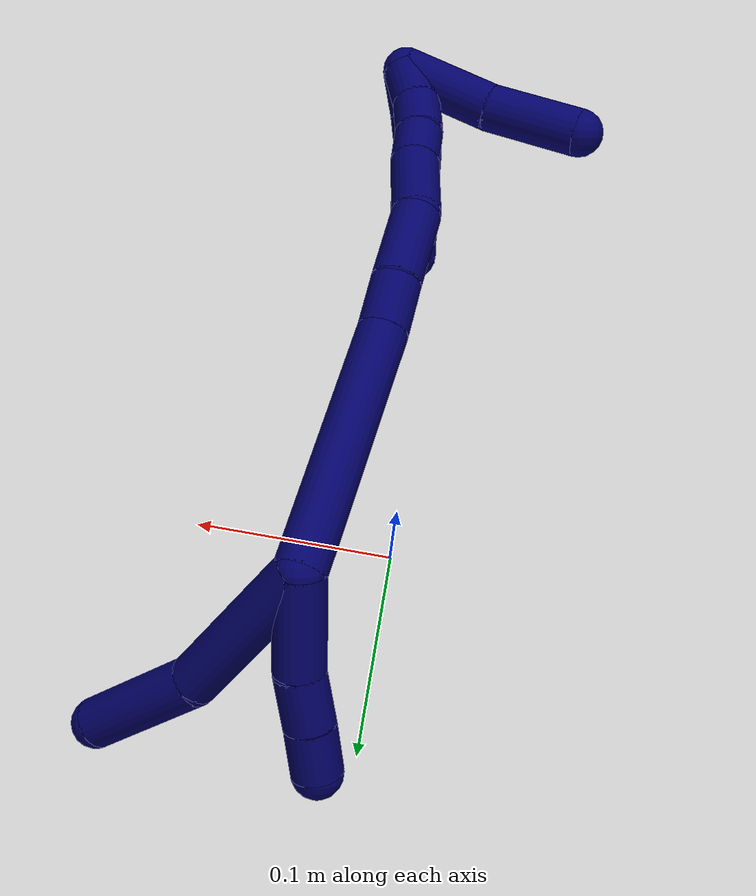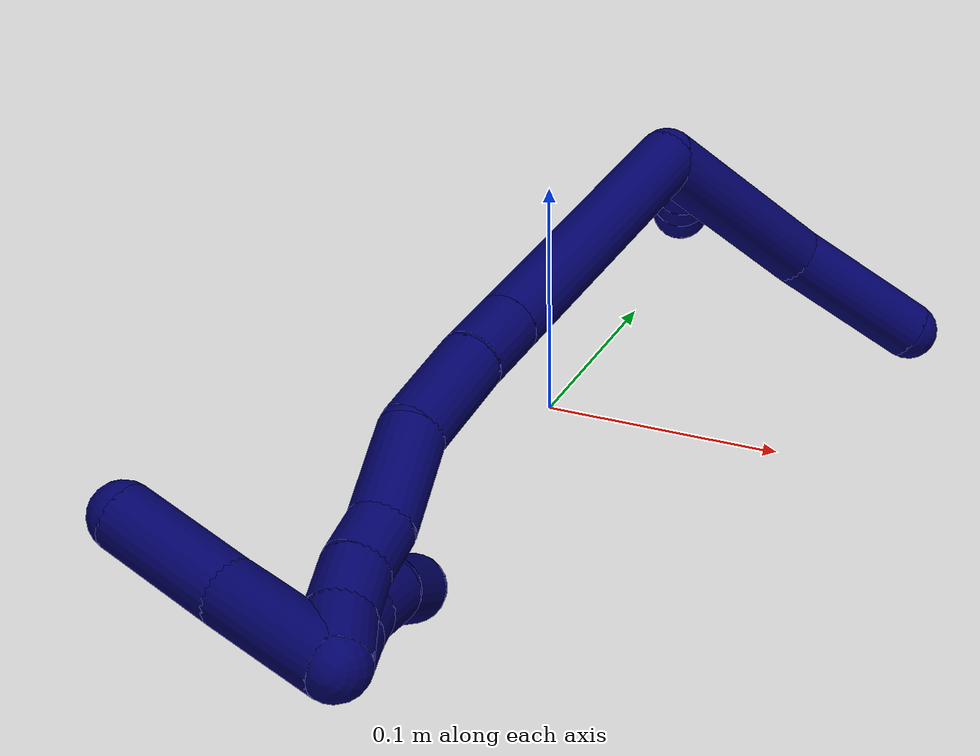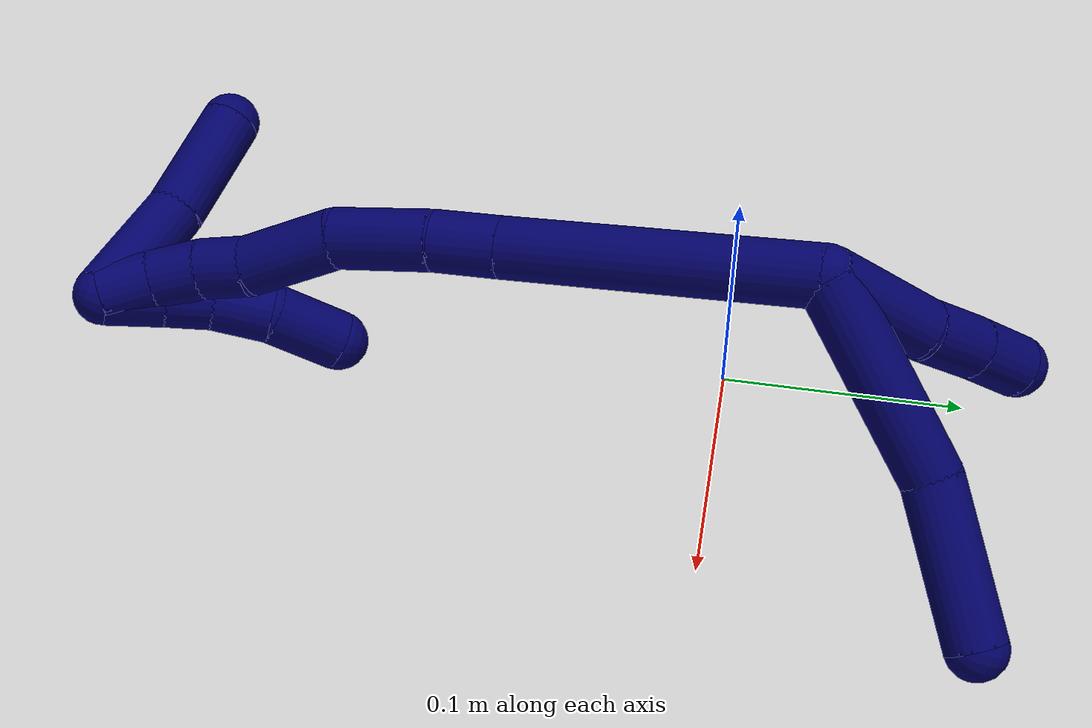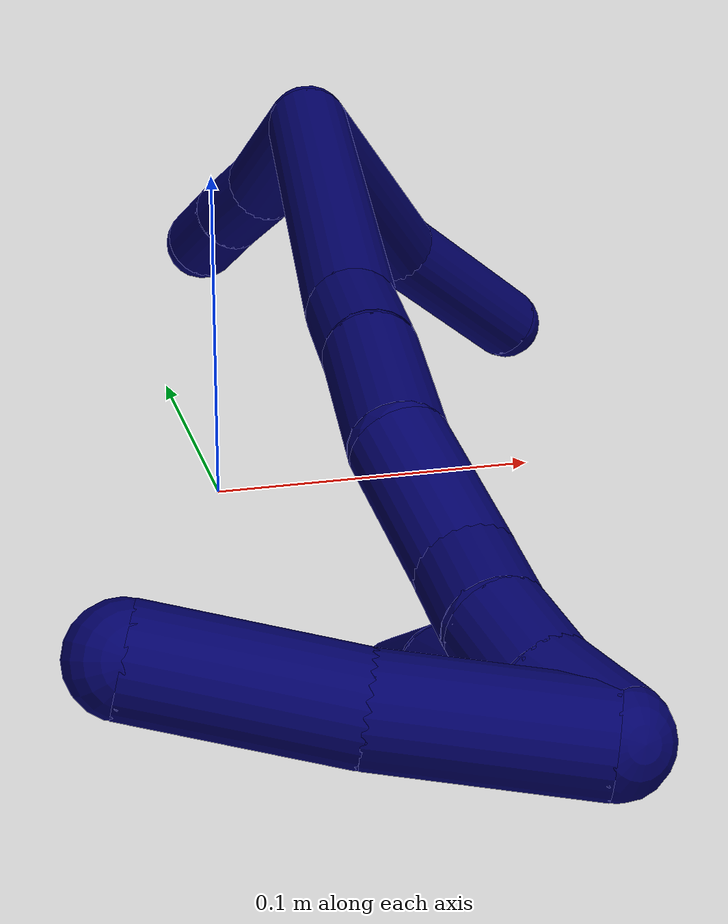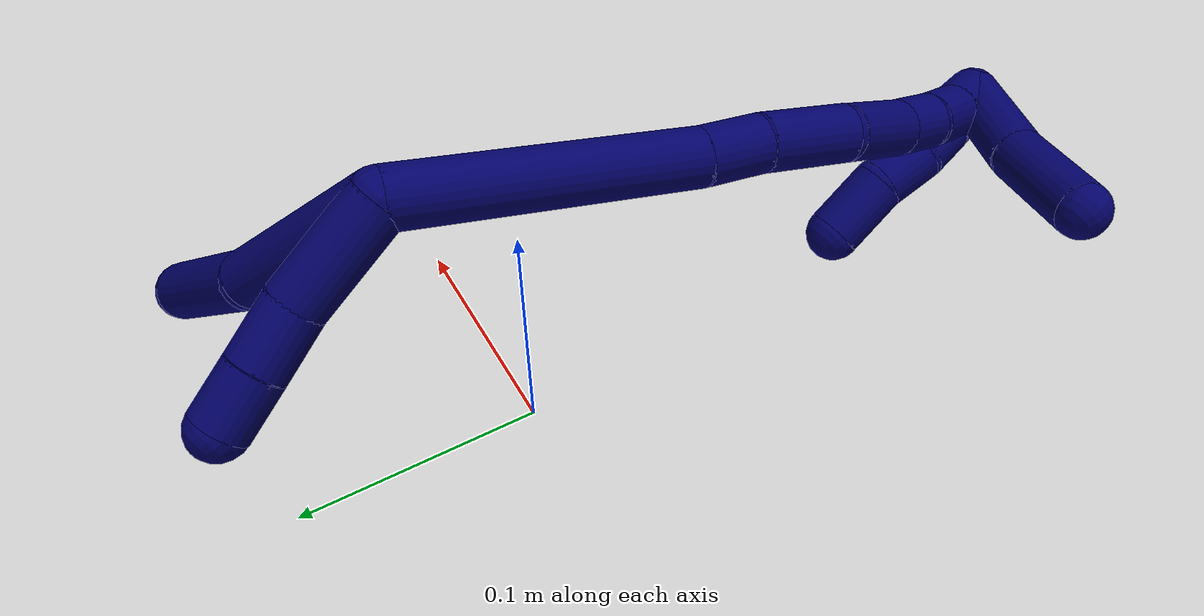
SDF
<sdf version="1.7">
 <world name="default">
  <model name="photoneo_s_sensor">
   <static>1</static>
   <pose>0 0 2 1.57079 1.57079 3.14159</pose>
   <link name="link">
    <inertial><mass>0.1</mass></inertial>
    <sensor name="sensor" type="depth">
     <update_rate>30</update_rate>
     <camera>
      <horizontal_fov>1.22</horizontal_fov>
      <image><width>1920</width><height>1200</height><format>B8G8R8</format></image>
      <clip><near>0.1</near><far>4</far></clip>
      <depth_camera><output>points</output></depth_camera>
     </camera>
     <plugin name="camera_plugin" filename="libgazebo_ros_depth_camera.so">
      <baseline>0.2</baseline>
      <alwaysOn>1</alwaysOn>
      <updateRate>0.0</updateRate>
      <cameraName>camera_ir</cameraName>
      <imageTopicName>/camera/color/image_raw</imageTopicName>
      <cameraInfoTopicName>/camera/color/camera_info</cameraInfoTopicName>
      <depthImageTopicName>/camera/depth/image_raw</depthImageTopicName>
      <depthImageCameraInfoTopicName>/camera/depth/camera_info</depthImageCameraInfoTopicName>
      <pointCloudTopicName>/camera/depth/points</pointCloudTopicName>
      <frameName>fr_optical</frameName>
      <pointCloudCutoff>0.1</pointCloudCutoff>
      <pointCloudCutoffMax>2.0</pointCloudCutoffMax>
      <distortionK1>0</distortionK1>
      <distortionK2>0</distortionK2>
      <distortionK3>0</distortionK3>
      <distortionT1>0</distortionT1>
      <distortionT2>0</distortionT2>
      <CxPrime>0</CxPrime>
      <Cx>0</Cx>
      <Cy>0</Cy>
      <focalLength>0</focalLength>
      <hackBaseline>0</hackBaseline>
     </plugin>
    </sensor>
   </link>
  </model>
  <model name="bin">
   <static>1</static>
   <link name="bottom">
    <collision name="collision-bottom">
     <pose>0 0 -0.01 0 -0 0</pose>
     <geometry><box><size>0.8 0.6 0.02</size></box></geometry>
     <surface>
      <friction><ode><mu>100</mu><mu2>100</mu2></ode></friction>
      <contact><collide_bitmask>65535</collide_bitmask></contact>
     </surface>
    </collision>
   </link>
   <link name="west_wall">
    <collision name="collision-west_wall">
     <pose>-0.41 0 0.1 0 -0 0</pose>
     <geometry><box><size>0.02 0.6 0.2</size></box></geometry>
     <surface>
      <friction><ode><mu>100</mu><mu2>100</mu2></ode></friction>
      <contact><collide_bitmask>65535</collide_bitmask></contact>
     </surface>
    </collision>
   </link>
   <link name="east_wall">
    <collision name="collision-east_wall">
     <pose>0.41 0 0.1 0 -0 0</pose>
     <geometry><box><size>0.02 0.6 0.2</size></box></geometry>
     <surface>
      <friction><ode><mu>100</mu><mu2>100</mu2></ode></friction>
      <contact><collide_bitmask>65535</collide_bitmask></contact>
     </surface>
    </collision>
   </link>
   <link name="south_wall">
    <collision name="collision-south_wall">
     <pose>0 -0.31 0.1 0 -0 0</pose>
     <geometry><box><size>0.8 0.02 0.2</size></box></geometry>
     <surface>
      <friction><ode><mu>100</mu><mu2>100</mu2></ode></friction>
      <contact><collide_bitmask>65535</collide_bitmask></contact>
     </surface>
    </collision>
   </link>
   <link name="north_wall">
    <collision name="collision-north_wall">
     <pose>0 0.31 0.1 0 -0 0</pose>
     <geometry><box><size>0.8 0.02 0.2</size></box></geometry>
     <surface>
      <friction><ode><mu>100</mu><mu2>100</mu2></ode></friction>
      <contact><collide_bitmask>65535</collide_bitmask></contact>
     </surface>
    </collision>
   </link>
  </model>
  <model name="7">
   <static>0</static>
   <link name="7">
    <collision name="collision-cylinder-e_1_2_8">
     <pose>0.027953 -0.014124 -0.028882 2.68676 0.715674 2.03323</pose>
     <geometry><cylinder><radius>0.0125</radius><length>0.085207</length></cylinder></geometry>
     <surface>
      <friction><ode><mu>1.16</mu><mu2>1.16</mu2><slip1>0</slip1><slip2>0</slip2></ode></friction>
      <contact><ode><kp>1e+06</kp><kd>1</kd><max_vel>0</max_vel><min_depth>0.001</min_depth></ode></contact>
     </surface>
    </collision>
    <visual name="visual-cylinder-e_1_2_8">
     <pose>0.027953 -0.014124 -0.028882 2.68676 0.715674 2.03323</pose>
     <geometry><cylinder><radius>0.0125</radius><length>0.085207</length></cylinder></geometry>
     <material><ambient>0.003922 0 0.403922 1</ambient></material>
    </visual>
    <collision name="collision-cylinder-e_2_8_6">
     <pose>0.083043 -0.038828 -0.071949 2.50071 0.992956 2.0423</pose>
     <geometry><cylinder><radius>0.0125</radius><length>0.064793</length></cylinder></geometry>
     <surface>
      <friction><ode><mu>1.16</mu><mu2>1.16</mu2><slip1>0</slip1><slip2>0</slip2></ode></friction>
      <contact><ode><kp>1e+06</kp><kd>1</kd><max_vel>0</max_vel><min_depth>0.001</min_depth></ode></contact>
     </surface>
    </collision>
    <visual name="visual-cylinder-e_2_8_6">
     <pose>0.083043 -0.038828 -0.071949 2.50071 0.992956 2.0423</pose>
     <geometry><cylinder><radius>0.0125</radius><length>0.064793</length></cylinder></geometry>
     <material><ambient>0.003922 0 0.403922 1</ambient></material>
    </visual>
    <collision name="collision-cylinder-e_1_2_9">
     <pose>0.001208 -0.005586 -0.023577 2.90897 0.049799 0.420029</pose>
     <geometry><cylinder><radius>0.0125</radius><length>0.04852</length></cylinder></geometry>
     <surface>
      <friction><ode><mu>1.16</mu><mu2>1.16</mu2><slip1>0</slip1><slip2>0</slip2></ode></friction>
      <contact><ode><kp>1e+06</kp><kd>1</kd><max_vel>0</max_vel><min_depth>0.001</min_depth></ode></contact>
     </surface>
    </collision>
    <visual name="visual-cylinder-e_1_2_9">
     <pose>0.001208 -0.005586 -0.023577 2.90897 0.049799 0.420029</pose>
     <geometry><cylinder><radius>0.0125</radius><length>0.04852</length></cylinder></geometry>
     <material><ambient>0.003922 0 0.403922 1</ambient></material>
    </visual>
    <collision name="collision-cylinder-e_2_9_10">
     <pose>0.000742 -0.014436 -0.059972 2.89218 -0.125809 -0.931249</pose>
     <geometry><cylinder><radius>0.0125</radius><length>0.026664</length></cylinder></geometry>
     <surface>
      <friction><ode><mu>1.16</mu><mu2>1.16</mu2><slip1>0</slip1><slip2>0</slip2></ode></friction>
      <contact><ode><kp>1e+06</kp><kd>1</kd><max_vel>0</max_vel><min_depth>0.001</min_depth></ode></contact>
     </surface>
    </collision>
    <visual name="visual-cylinder-e_2_9_10">
     <pose>0.000742 -0.014436 -0.059972 2.89218 -0.125809 -0.931249</pose>
     <geometry><cylinder><radius>0.0125</radius><length>0.026664</length></cylinder></geometry>
     <material><ambient>0.003922 0 0.403922 1</ambient></material>
    </visual>
    <collision name="collision-cylinder-e_3_10_5">
     <pose>-0.002001 -0.020962 -0.084713 2.87463 -0.086386 -0.622793</pose>
     <geometry><cylinder><radius>0.0125</radius><length>0.024816</length></cylinder></geometry>
     <surface>
      <friction><ode><mu>1.16</mu><mu2>1.16</mu2><slip1>0</slip1><slip2>0</slip2></ode></friction>
      <contact><ode><kp>1e+06</kp><kd>1</kd><max_vel>0</max_vel><min_depth>0.001</min_depth></ode></contact>
     </surface>
    </collision>
    <visual name="visual-cylinder-e_3_10_5">
     <pose>-0.002001 -0.020962 -0.084713 2.87463 -0.086386 -0.622793</pose>
     <geometry><cylinder><radius>0.0125</radius><length>0.024816</length></cylinder></geometry>
     <material><ambient>0.003922 0 0.403922 1</ambient></material>
    </visual>
    <collision name="collision-cylinder-e_1_2_11">
     <pose>-0.01334 -0.035174 0.051593 0.598377 -0.210479 -0.065139</pose>
     <geometry><cylinder><radius>0.0125</radius><length>0.127704</length></cylinder></geometry>
     <surface>
      <friction><ode><mu>1.16</mu><mu2>1.16</mu2><slip1>0</slip1><slip2>0</slip2></ode></friction>
      <contact><ode><kp>1e+06</kp><kd>1</kd><max_vel>0</max_vel><min_depth>0.001</min_depth></ode></contact>
     </surface>
    </collision>
    <visual name="visual-cylinder-e_1_2_11">
     <pose>-0.01334 -0.035174 0.051593 0.598377 -0.210479 -0.065139</pose>
     <geometry><cylinder><radius>0.0125</radius><length>0.127704</length></cylinder></geometry>
     <material><ambient>0.003922 0 0.403922 1</ambient></material>
    </visual>
    <collision name="collision-cylinder-e_2_11_12">
     <pose>-0.029004 -0.077096 0.115018 0.51829 -0.168942 -0.044887</pose>
     <geometry><cylinder><radius>0.0125</radius><length>0.027634</length></cylinder></geometry>
     <surface>
      <friction><ode><mu>1.16</mu><mu2>1.16</mu2><slip1>0</slip1><slip2>0</slip2></ode></friction>
      <contact><ode><kp>1e+06</kp><kd>1</kd><max_vel>0</max_vel><min_depth>0.001</min_depth></ode></contact>
     </surface>
    </collision>
    <visual name="visual-cylinder-e_2_11_12">
     <pose>-0.029004 -0.077096 0.115018 0.51829 -0.168942 -0.044887</pose>
     <geometry><cylinder><radius>0.0125</radius><length>0.027634</length></cylinder></geometry>
     <material><ambient>0.003922 0 0.403922 1</ambient></material>
    </visual>
    <collision name="collision-cylinder-e_3_12_13">
     <pose>-0.034721 -0.096095 0.143534 0.633419 -0.16248 -0.053356</pose>
     <geometry><cylinder><radius>0.0125</radius><length>0.041952</length></cylinder></geometry>
     <surface>
      <friction><ode><mu>1.16</mu><mu2>1.16</mu2><slip1>0</slip1><slip2>0</slip2></ode></friction>
      <contact><ode><kp>1e+06</kp><kd>1</kd><max_vel>0</max_vel><min_depth>0.001</min_depth></ode></contact>
     </surface>
    </collision>
    <visual name="visual-cylinder-e_3_12_13">
     <pose>-0.034721 -0.096095 0.143534 0.633419 -0.16248 -0.053356</pose>
     <geometry><cylinder><radius>0.0125</radius><length>0.041952</length></cylinder></geometry>
     <material><ambient>0.003922 0 0.403922 1</ambient></material>
    </visual>
    <collision name="collision-cylinder-e_4_13_14">
     <pose>-0.036024 -0.122437 0.174165 0.790496 0.105038 0.043855</pose>
     <geometry><cylinder><radius>0.0125</radius><length>0.03987</length></cylinder></geometry>
     <surface>
      <friction><ode><mu>1.16</mu><mu2>1.16</mu2><slip1>0</slip1><slip2>0</slip2></ode></friction>
      <contact><ode><kp>1e+06</kp><kd>1</kd><max_vel>0</max_vel><min_depth>0.001</min_depth></ode></contact>
     </surface>
    </collision>
    <visual name="visual-cylinder-e_4_13_14">
     <pose>-0.036024 -0.122437 0.174165 0.790496 0.105038 0.043855</pose>
     <geometry><cylinder><radius>0.0125</radius><length>0.03987</length></cylinder></geometry>
     <material><ambient>0.003922 0 0.403922 1</ambient></material>
    </visual>
    <collision name="collision-cylinder-e_5_14_15">
     <pose>-0.034395 -0.142332 0.196351 0.613741 -0.045752 -0.0145</pose>
     <geometry><cylinder><radius>0.0125</radius><length>0.02018</length></cylinder></geometry>
     <surface>
      <friction><ode><mu>1.16</mu><mu2>1.16</mu2><slip1>0</slip1><slip2>0</slip2></ode></friction>
      <contact><ode><kp>1e+06</kp><kd>1</kd><max_vel>0</max_vel><min_depth>0.001</min_depth></ode></contact>
     </surface>
    </collision>
    <visual name="visual-cylinder-e_5_14_15">
     <pose>-0.034395 -0.142332 0.196351 0.613741 -0.045752 -0.0145</pose>
     <geometry><cylinder><radius>0.0125</radius><length>0.02018</length></cylinder></geometry>
     <material><ambient>0.003922 0 0.403922 1</ambient></material>
    </visual>
    <collision name="collision-cylinder-e_6_15_16">
     <pose>-0.033418 -0.154268 0.21297 0.631691 0.137701 0.045062</pose>
     <geometry><cylinder><radius>0.0125</radius><length>0.020964</length></cylinder></geometry>
     <surface>
      <friction><ode><mu>1.16</mu><mu2>1.16</mu2><slip1>0</slip1><slip2>0</slip2></ode></friction>
      <contact><ode><kp>1e+06</kp><kd>1</kd><max_vel>0</max_vel><min_depth>0.001</min_depth></ode></contact>
     </surface>
    </collision>
    <visual name="visual-cylinder-e_6_15_16">
     <pose>-0.033418 -0.154268 0.21297 0.631691 0.137701 0.045062</pose>
     <geometry><cylinder><radius>0.0125</radius><length>0.020964</length></cylinder></geometry>
     <material><ambient>0.003922 0 0.403922 1</ambient></material>
    </visual>
    <collision name="collision-cylinder-e_7_16_1">
     <pose>-0.028659 -0.165445 0.230361 0.510483 0.311012 0.081768</pose>
     <geometry><cylinder><radius>0.0125</radius><length>0.021697</length></cylinder></geometry>
     <surface>
      <friction><ode><mu>1.16</mu><mu2>1.16</mu2><slip1>0</slip1><slip2>0</slip2></ode></friction>
      <contact><ode><kp>1e+06</kp><kd>1</kd><max_vel>0</max_vel><min_depth>0.001</min_depth></ode></contact>
     </surface>
    </collision>
    <visual name="visual-cylinder-e_7_16_1">
     <pose>-0.028659 -0.165445 0.230361 0.510483 0.311012 0.081768</pose>
     <geometry><cylinder><radius>0.0125</radius><length>0.021697</length></cylinder></geometry>
     <material><ambient>0.003922 0 0.403922 1</ambient></material>
    </visual>
    <collision name="collision-cylinder-e_1_1_17">
     <pose>-0.04789 -0.167446 0.228875 -2.85917 -1.11948 2.69539</pose>
     <geometry><cylinder><radius>0.0125</radius><length>0.050119</length></cylinder></geometry>
     <surface>
      <friction><ode><mu>1.16</mu><mu2>1.16</mu2><slip1>0</slip1><slip2>0</slip2></ode></friction>
      <contact><ode><kp>1e+06</kp><kd>1</kd><max_vel>0</max_vel><min_depth>0.001</min_depth></ode></contact>
     </surface>
    </collision>
    <visual name="visual-cylinder-e_1_1_17">
     <pose>-0.04789 -0.167446 0.228875 -2.85917 -1.11948 2.69539</pose>
     <geometry><cylinder><radius>0.0125</radius><length>0.050119</length></cylinder></geometry>
     <material><ambient>0.003922 0 0.403922 1</ambient></material>
    </visual>
    <collision name="collision-cylinder-e_2_17_4">
     <pose>-0.09368 -0.159296 0.210902 -2.54264 -1.19937 2.29319</pose>
     <geometry><cylinder><radius>0.0125</radius><length>0.049881</length></cylinder></geometry>
     <surface>
      <friction><ode><mu>1.16</mu><mu2>1.16</mu2><slip1>0</slip1><slip2>0</slip2></ode></friction>
      <contact><ode><kp>1e+06</kp><kd>1</kd><max_vel>0</max_vel><min_depth>0.001</min_depth></ode></contact>
     </surface>
    </collision>
    <visual name="visual-cylinder-e_2_17_4">
     <pose>-0.09368 -0.159296 0.210902 -2.54264 -1.19937 2.29319</pose>
     <geometry><cylinder><radius>0.0125</radius><length>0.049881</length></cylinder></geometry>
     <material><ambient>0.003922 0 0.403922 1</ambient></material>
    </visual>
    <collision name="collision-cylinder-e_1_1_18">
     <pose>-0.027599 -0.169151 0.227422 -3.02983 -0.185767 2.05999</pose>
     <geometry><cylinder><radius>0.0125</radius><length>0.02447</length></cylinder></geometry>
     <surface>
      <friction><ode><mu>1.16</mu><mu2>1.16</mu2><slip1>0</slip1><slip2>0</slip2></ode></friction>
      <contact><ode><kp>1e+06</kp><kd>1</kd><max_vel>0</max_vel><min_depth>0.001</min_depth></ode></contact>
     </surface>
    </collision>
    <visual name="visual-cylinder-e_1_1_18">
     <pose>-0.027599 -0.169151 0.227422 -3.02983 -0.185767 2.05999</pose>
     <geometry><cylinder><radius>0.0125</radius><length>0.02447</length></cylinder></geometry>
     <material><ambient>0.003922 0 0.403922 1</ambient></material>
    </visual>
    <collision name="collision-cylinder-e_2_18_19">
     <pose>-0.031167 -0.16633 0.205622 -2.99249 -0.130612 1.43834</pose>
     <geometry><cylinder><radius>0.0125</radius><length>0.020093</length></cylinder></geometry>
     <surface>
      <friction><ode><mu>1.16</mu><mu2>1.16</mu2><slip1>0</slip1><slip2>0</slip2></ode></friction>
      <contact><ode><kp>1e+06</kp><kd>1</kd><max_vel>0</max_vel><min_depth>0.001</min_depth></ode></contact>
     </surface>
    </collision>
    <visual name="visual-cylinder-e_2_18_19">
     <pose>-0.031167 -0.16633 0.205622 -2.99249 -0.130612 1.43834</pose>
     <geometry><cylinder><radius>0.0125</radius><length>0.020093</length></cylinder></geometry>
     <material><ambient>0.003922 0 0.403922 1</ambient></material>
    </visual>
    <collision name="collision-cylinder-e_3_19_20">
     <pose>-0.031722 -0.163064 0.183544 -2.9966 0.060905 -0.794307</pose>
     <geometry><cylinder><radius>0.0125</radius><length>0.024762</length></cylinder></geometry>
     <surface>
      <friction><ode><mu>1.16</mu><mu2>1.16</mu2><slip1>0</slip1><slip2>0</slip2></ode></friction>
      <contact><ode><kp>1e+06</kp><kd>1</kd><max_vel>0</max_vel><min_depth>0.001</min_depth></ode></contact>
     </surface>
    </collision>
    <visual name="visual-cylinder-e_3_19_20">
     <pose>-0.031722 -0.163064 0.183544 -2.9966 0.060905 -0.794307</pose>
     <geometry><cylinder><radius>0.0125</radius><length>0.024762</length></cylinder></geometry>
     <material><ambient>0.003922 0 0.403922 1</ambient></material>
    </visual>
    <collision name="collision-cylinder-e_4_20_3">
     <pose>-0.030109 -0.163587 0.156177 2.99029 0.056048 0.708446</pose>
     <geometry><cylinder><radius>0.0125</radius><length>0.030675</length></cylinder></geometry>
     <surface>
      <friction><ode><mu>1.16</mu><mu2>1.16</mu2><slip1>0</slip1><slip2>0</slip2></ode></friction>
      <contact><ode><kp>1e+06</kp><kd>1</kd><max_vel>0</max_vel><min_depth>0.001</min_depth></ode></contact>
     </surface>
    </collision>
    <visual name="visual-cylinder-e_4_20_3">
     <pose>-0.030109 -0.163587 0.156177 2.99029 0.056048 0.708446</pose>
     <geometry><cylinder><radius>0.0125</radius><length>0.030675</length></cylinder></geometry>
     <material><ambient>0.003922 0 0.403922 1</ambient></material>
    </visual>
    <collision name="collision-sphere-3">
     <pose>-0.02925 -0.165895 0.141039 0 -0 0</pose>
     <geometry><sphere><radius>0.0125</radius></sphere></geometry>
     <surface>
      <friction><ode><mu>1.16</mu><mu2>1.16</mu2><slip1>0</slip1><slip2>0</slip2></ode></friction>
      <contact><ode><kp>1e+06</kp><kd>1</kd><max_vel>0</max_vel><min_depth>0.001</min_depth></ode></contact>
     </surface>
    </collision>
    <visual name="visual-sphere-3">
     <pose>-0.02925 -0.165895 0.141039 0 -0 0</pose>
     <geometry><sphere><radius>0.0125</radius></sphere></geometry>
     <material><ambient>0.003922 0 0.403922 1</ambient></material>
    </visual>
    <collision name="collision-sphere-20">
     <pose>-0.030969 -0.161279 0.171315 0 -0 0</pose>
     <geometry><sphere><radius>0.0125</radius></sphere></geometry>
     <surface>
      <friction><ode><mu>1.16</mu><mu2>1.16</mu2><slip1>0</slip1><slip2>0</slip2></ode></friction>
      <contact><ode><kp>1e+06</kp><kd>1</kd><max_vel>0</max_vel><min_depth>0.001</min_depth></ode></contact>
     </surface>
    </collision>
    <visual name="visual-sphere-20">
     <pose>-0.030969 -0.161279 0.171315 0 -0 0</pose>
     <geometry><sphere><radius>0.0125</radius></sphere></geometry>
     <material><ambient>0.003922 0 0.403922 1</ambient></material>
    </visual>
    <collision name="collision-sphere-19">
     <pose>-0.032476 -0.16485 0.195772 0 -0 0</pose>
     <geometry><sphere><radius>0.0125</radius></sphere></geometry>
     <surface>
      <friction><ode><mu>1.16</mu><mu2>1.16</mu2><slip1>0</slip1><slip2>0</slip2></ode></friction>
      <contact><ode><kp>1e+06</kp><kd>1</kd><max_vel>0</max_vel><min_depth>0.001</min_depth></ode></contact>
     </surface>
    </collision>
    <visual name="visual-sphere-19">
     <pose>-0.032476 -0.16485 0.195772 0 -0 0</pose>
     <geometry><sphere><radius>0.0125</radius></sphere></geometry>
     <material><ambient>0.003922 0 0.403922 1</ambient></material>
    </visual>
    <collision name="collision-sphere-5">
     <pose>-0.003072 -0.024223 -0.096637 0 -0 0</pose>
     <geometry><sphere><radius>0.0125</radius></sphere></geometry>
     <surface>
      <friction><ode><mu>1.16</mu><mu2>1.16</mu2><slip1>0</slip1><slip2>0</slip2></ode></friction>
      <contact><ode><kp>1e+06</kp><kd>1</kd><max_vel>0</max_vel><min_depth>0.001</min_depth></ode></contact>
     </surface>
    </collision>
    <visual name="visual-sphere-5">
     <pose>-0.003072 -0.024223 -0.096637 0 -0 0</pose>
     <geometry><sphere><radius>0.0125</radius></sphere></geometry>
     <material><ambient>0.003922 0 0.403922 1</ambient></material>
    </visual>
    <collision name="collision-sphere-10">
     <pose>-0.00093 -0.017701 -0.07279 0 -0 0</pose>
     <geometry><sphere><radius>0.0125</radius></sphere></geometry>
     <surface>
      <friction><ode><mu>1.16</mu><mu2>1.16</mu2><slip1>0</slip1><slip2>0</slip2></ode></friction>
      <contact><ode><kp>1e+06</kp><kd>1</kd><max_vel>0</max_vel><min_depth>0.001</min_depth></ode></contact>
     </surface>
    </collision>
    <visual name="visual-sphere-10">
     <pose>-0.00093 -0.017701 -0.07279 0 -0 0</pose>
     <geometry><sphere><radius>0.0125</radius></sphere></geometry>
     <material><ambient>0.003922 0 0.403922 1</ambient></material>
    </visual>
    <collision name="collision-sphere-6">
     <pose>0.11018 -0.049409 -0.086133 0 -0 0</pose>
     <geometry><sphere><radius>0.0125</radius></sphere></geometry>
     <surface>
      <friction><ode><mu>1.16</mu><mu2>1.16</mu2><slip1>0</slip1><slip2>0</slip2></ode></friction>
      <contact><ode><kp>1e+06</kp><kd>1</kd><max_vel>0</max_vel><min_depth>0.001</min_depth></ode></contact>
     </surface>
    </collision>
    <visual name="visual-sphere-6">
     <pose>0.11018 -0.049409 -0.086133 0 -0 0</pose>
     <geometry><sphere><radius>0.0125</radius></sphere></geometry>
     <material><ambient>0.003922 0 0.403922 1</ambient></material>
    </visual>
    <collision name="collision-sphere-9">
     <pose>0.002415 -0.011171 -0.047155 0 -0 0</pose>
     <geometry><sphere><radius>0.0125</radius></sphere></geometry>
     <surface>
      <friction><ode><mu>1.16</mu><mu2>1.16</mu2><slip1>0</slip1><slip2>0</slip2></ode></friction>
      <contact><ode><kp>1e+06</kp><kd>1</kd><max_vel>0</max_vel><min_depth>0.001</min_depth></ode></contact>
     </surface>
    </collision>
    <visual name="visual-sphere-9">
     <pose>0.002415 -0.011171 -0.047155 0 -0 0</pose>
     <geometry><sphere><radius>0.0125</radius></sphere></geometry>
     <material><ambient>0.003922 0 0.403922 1</ambient></material>
    </visual>
    <collision name="collision-sphere-2">
     <geometry><sphere><radius>0.0125</radius></sphere></geometry>
     <surface>
      <friction><ode><mu>1.16</mu><mu2>1.16</mu2><slip1>0</slip1><slip2>0</slip2></ode></friction>
      <contact><ode><kp>1e+06</kp><kd>1</kd><max_vel>0</max_vel><min_depth>0.001</min_depth></ode></contact>
     </surface>
    </collision>
    <visual name="visual-sphere-2">
     <geometry><sphere><radius>0.0125</radius></sphere></geometry>
     <material><ambient>0.003922 0 0.403922 1</ambient></material>
    </visual>
    <collision name="collision-sphere-8">
     <pose>0.055907 -0.028248 -0.057765 0 -0 0</pose>
     <geometry><sphere><radius>0.0125</radius></sphere></geometry>
     <surface>
      <friction><ode><mu>1.16</mu><mu2>1.16</mu2><slip1>0</slip1><slip2>0</slip2></ode></friction>
      <contact><ode><kp>1e+06</kp><kd>1</kd><max_vel>0</max_vel><min_depth>0.001</min_depth></ode></contact>
     </surface>
    </collision>
    <visual name="visual-sphere-8">
     <pose>0.055907 -0.028248 -0.057765 0 -0 0</pose>
     <geometry><sphere><radius>0.0125</radius></sphere></geometry>
     <material><ambient>0.003922 0 0.403922 1</ambient></material>
    </visual>
    <collision name="collision-sphere-11">
     <pose>-0.026681 -0.070348 0.103187 0 -0 0</pose>
     <geometry><sphere><radius>0.0125</radius></sphere></geometry>
     <surface>
      <friction><ode><mu>1.16</mu><mu2>1.16</mu2><slip1>0</slip1><slip2>0</slip2></ode></friction>
      <contact><ode><kp>1e+06</kp><kd>1</kd><max_vel>0</max_vel><min_depth>0.001</min_depth></ode></contact>
     </surface>
    </collision>
    <visual name="visual-sphere-11">
     <pose>-0.026681 -0.070348 0.103187 0 -0 0</pose>
     <geometry><sphere><radius>0.0125</radius></sphere></geometry>
     <material><ambient>0.003922 0 0.403922 1</ambient></material>
    </visual>
    <collision name="collision-sphere-12">
     <pose>-0.031327 -0.083843 0.12685 0 -0 0</pose>
     <geometry><sphere><radius>0.0125</radius></sphere></geometry>
     <surface>
      <friction><ode><mu>1.16</mu><mu2>1.16</mu2><slip1>0</slip1><slip2>0</slip2></ode></friction>
      <contact><ode><kp>1e+06</kp><kd>1</kd><max_vel>0</max_vel><min_depth>0.001</min_depth></ode></contact>
     </surface>
    </collision>
    <visual name="visual-sphere-12">
     <pose>-0.031327 -0.083843 0.12685 0 -0 0</pose>
     <geometry><sphere><radius>0.0125</radius></sphere></geometry>
     <material><ambient>0.003922 0 0.403922 1</ambient></material>
    </visual>
    <collision name="collision-sphere-13">
     <pose>-0.038114 -0.108348 0.160218 0 -0 0</pose>
     <geometry><sphere><radius>0.0125</radius></sphere></geometry>
     <surface>
      <friction><ode><mu>1.16</mu><mu2>1.16</mu2><slip1>0</slip1><slip2>0</slip2></ode></friction>
      <contact><ode><kp>1e+06</kp><kd>1</kd><max_vel>0</max_vel><min_depth>0.001</min_depth></ode></contact>
     </surface>
    </collision>
    <visual name="visual-sphere-13">
     <pose>-0.038114 -0.108348 0.160218 0 -0 0</pose>
     <geometry><sphere><radius>0.0125</radius></sphere></geometry>
     <material><ambient>0.003922 0 0.403922 1</ambient></material>
    </visual>
    <collision name="collision-sphere-14">
     <pose>-0.033934 -0.136527 0.188111 0 -0 0</pose>
     <geometry><sphere><radius>0.0125</radius></sphere></geometry>
     <surface>
      <friction><ode><mu>1.16</mu><mu2>1.16</mu2><slip1>0</slip1><slip2>0</slip2></ode></friction>
      <contact><ode><kp>1e+06</kp><kd>1</kd><max_vel>0</max_vel><min_depth>0.001</min_depth></ode></contact>
     </surface>
    </collision>
    <visual name="visual-sphere-14">
     <pose>-0.033934 -0.136527 0.188111 0 -0 0</pose>
     <geometry><sphere><radius>0.0125</radius></sphere></geometry>
     <material><ambient>0.003922 0 0.403922 1</ambient></material>
    </visual>
    <collision name="collision-sphere-15">
     <pose>-0.034857 -0.148137 0.204591 0 -0 0</pose>
     <geometry><sphere><radius>0.0125</radius></sphere></geometry>
     <surface>
      <friction><ode><mu>1.16</mu><mu2>1.16</mu2><slip1>0</slip1><slip2>0</slip2></ode></friction>
      <contact><ode><kp>1e+06</kp><kd>1</kd><max_vel>0</max_vel><min_depth>0.001</min_depth></ode></contact>
     </surface>
    </collision>
    <visual name="visual-sphere-15">
     <pose>-0.034857 -0.148137 0.204591 0 -0 0</pose>
     <geometry><sphere><radius>0.0125</radius></sphere></geometry>
     <material><ambient>0.003922 0 0.403922 1</ambient></material>
    </visual>
    <collision name="collision-sphere-16">
     <pose>-0.031979 -0.160399 0.22135 0 -0 0</pose>
     <geometry><sphere><radius>0.0125</radius></sphere></geometry>
     <surface>
      <friction><ode><mu>1.16</mu><mu2>1.16</mu2><slip1>0</slip1><slip2>0</slip2></ode></friction>
      <contact><ode><kp>1e+06</kp><kd>1</kd><max_vel>0</max_vel><min_depth>0.001</min_depth></ode></contact>
     </surface>
    </collision>
    <visual name="visual-sphere-16">
     <pose>-0.031979 -0.160399 0.22135 0 -0 0</pose>
     <geometry><sphere><radius>0.0125</radius></sphere></geometry>
     <material><ambient>0.003922 0 0.403922 1</ambient></material>
    </visual>
    <collision name="collision-sphere-1">
     <pose>-0.025339 -0.170492 0.239372 0 -0 0</pose>
     <geometry><sphere><radius>0.0125</radius></sphere></geometry>
     <surface>
      <friction><ode><mu>1.16</mu><mu2>1.16</mu2><slip1>0</slip1><slip2>0</slip2></ode></friction>
      <contact><ode><kp>1e+06</kp><kd>1</kd><max_vel>0</max_vel><min_depth>0.001</min_depth></ode></contact>
     </surface>
    </collision>
    <visual name="visual-sphere-1">
     <pose>-0.025339 -0.170492 0.239372 0 -0 0</pose>
     <geometry><sphere><radius>0.0125</radius></sphere></geometry>
     <material><ambient>0.003922 0 0.403922 1</ambient></material>
    </visual>
    <collision name="collision-sphere-18">
     <pose>-0.029859 -0.167809 0.215473 0 -0 0</pose>
     <geometry><sphere><radius>0.0125</radius></sphere></geometry>
     <surface>
      <friction><ode><mu>1.16</mu><mu2>1.16</mu2><slip1>0</slip1><slip2>0</slip2></ode></friction>
      <contact><ode><kp>1e+06</kp><kd>1</kd><max_vel>0</max_vel><min_depth>0.001</min_depth></ode></contact>
     </surface>
    </collision>
    <visual name="visual-sphere-18">
     <pose>-0.029859 -0.167809 0.215473 0 -0 0</pose>
     <geometry><sphere><radius>0.0125</radius></sphere></geometry>
     <material><ambient>0.003922 0 0.403922 1</ambient></material>
    </visual>
    <collision name="collision-sphere-17">
     <pose>-0.07044 -0.1644 0.218378 0 -0 0</pose>
     <geometry><sphere><radius>0.0125</radius></sphere></geometry>
     <surface>
      <friction><ode><mu>1.16</mu><mu2>1.16</mu2><slip1>0</slip1><slip2>0</slip2></ode></friction>
      <contact><ode><kp>1e+06</kp><kd>1</kd><max_vel>0</max_vel><min_depth>0.001</min_depth></ode></contact>
     </surface>
    </collision>
    <visual name="visual-sphere-17">
     <pose>-0.07044 -0.1644 0.218378 0 -0 0</pose>
     <geometry><sphere><radius>0.0125</radius></sphere></geometry>
     <material><ambient>0.003922 0 0.403922 1</ambient></material>
    </visual>
    <collision name="collision-sphere-4">
     <pose>-0.11692 -0.154193 0.203426 0 -0 0</pose>
     <geometry><sphere><radius>0.0125</radius></sphere></geometry>
     <surface>
      <friction><ode><mu>1.16</mu><mu2>1.16</mu2><slip1>0</slip1><slip2>0</slip2></ode></friction>
      <contact><ode><kp>1e+06</kp><kd>1</kd><max_vel>0</max_vel><min_depth>0.001</min_depth></ode></contact>
     </surface>
    </collision>
    <visual name="visual-sphere-4">
     <pose>-0.11692 -0.154193 0.203426 0 -0 0</pose>
     <geometry><sphere><radius>0.0125</radius></sphere></geometry>
     <material><ambient>0.003922 0 0.403922 1</ambient></material>
    </visual>
    <inertial>
     <pose>-0.012943 -0.084002 0.08695 0 -0 0</pose>
     <mass>0.75</mass>
     <inertia>
      <ixx>0.000229</ixx>
      <ixy>0</ixy>
      <ixz>0</ixz>
      <iyy>0.000261</iyy>
      <iyz>0</iyz>
      <izz>0.000135</izz>
     </inertia>
    </inertial>
   </link>
   <pose>0.037286 0.035442 0.105724 1.18029 0.152154 0.112374</pose>
  </model>
 </world>
</sdf>
